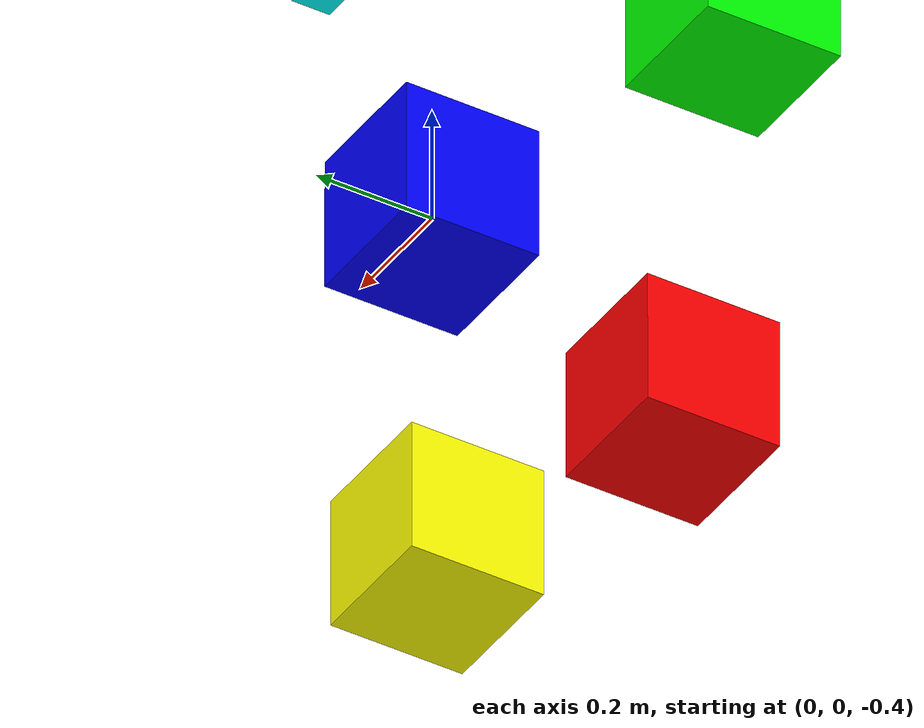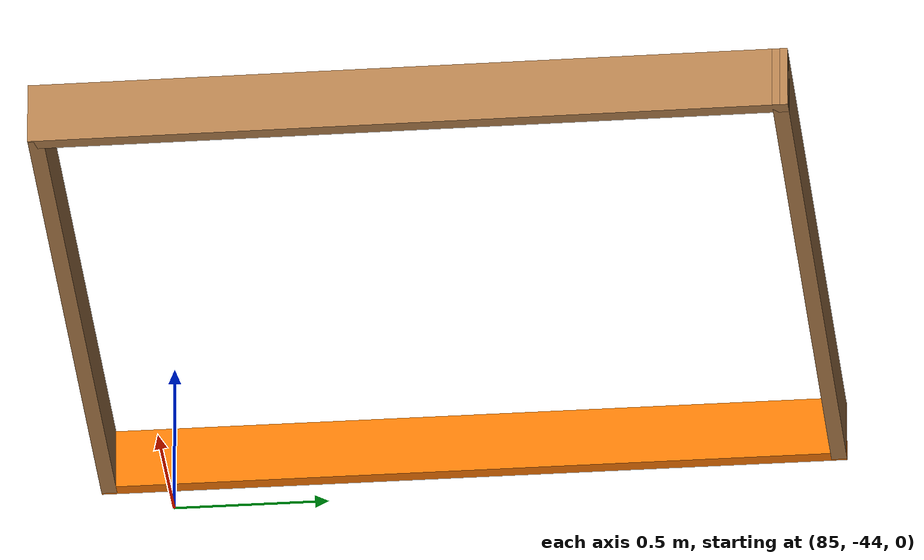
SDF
<?xml version='1.0'?>
<sdf version='1.6'>
  <model name='unit_box_0'>
    <link name='link'>
      <pose frame=''>-0 0 -0.382035 0 -0 0</pose>
      <inertial>
        <mass>1</mass>
        <inertia>
          <ixx>0.166667</ixx>
          <ixy>0</ixy>
          <ixz>0</ixz>
          <iyy>0.166667</iyy>
          <iyz>0</iyz>
          <izz>0.166667</izz>
        </inertia>
        <pose frame=''>0 0 0 0 -0 0</pose>
      </inertial>
      <self_collide>0</self_collide>
      <kinematic>0</kinematic>
      <gravity>1</gravity>
      <visual name='visual'>
        <geometry>
          <box>
            <size>0.23 0.23 0.23</size>
          </box>
        </geometry>
        <material>
          <script>
            <name>Gazebo/Grey</name>
            <uri>file://media/materials/scripts/gazebo.material</uri>
          </script>
          <ambient>0 0 1 1</ambient>
          <diffuse>0 0 1 1</diffuse>
          <specular>0 0 1 1</specular>
          <emissive>0 0 0 1</emissive>
          <shader type='vertex'>
            <normal_map>__default__</normal_map>
          </shader>
        </material>
        <pose frame=''>0 0 0 0 -0 0</pose>
        <cast_shadows>1</cast_shadows>
        <transparency>0</transparency>
      </visual>
      <collision name='collision'>
        <laser_retro>0</laser_retro>
        <max_contacts>10</max_contacts>
        <pose frame=''>0 0 0 0 -0 0</pose>
        <geometry>
          <box>
            <size>1 1 1</size>
          </box>
        </geometry>
        <surface>
          <friction>
            <ode>
              <mu>1</mu>
              <mu2>1</mu2>
              <fdir1>0 0 0</fdir1>
              <slip1>0</slip1>
              <slip2>0</slip2>
            </ode>
            <torsional>
              <coefficient>1</coefficient>
              <patch_radius>0</patch_radius>
              <surface_radius>0</surface_radius>
              <use_patch_radius>1</use_patch_radius>
              <ode>
                <slip>0</slip>
              </ode>
            </torsional>
          </friction>
          <bounce>
            <restitution_coefficient>0</restitution_coefficient>
            <threshold>1e+06</threshold>
          </bounce>
          <contact>
            <collide_without_contact>0</collide_without_contact>
            <collide_without_contact_bitmask>1</collide_without_contact_bitmask>
            <collide_bitmask>1</collide_bitmask>
            <ode>
              <soft_cfm>0</soft_cfm>
              <soft_erp>0.2</soft_erp>
              <kp>1e+13</kp>
              <kd>1</kd>
              <max_vel>0.01</max_vel>
              <min_depth>0</min_depth>
            </ode>
            <bullet>
              <split_impulse>1</split_impulse>
              <split_impulse_penetration_threshold>-0.01</split_impulse_penetration_threshold>
              <soft_cfm>0</soft_cfm>
              <soft_erp>0.2</soft_erp>
              <kp>1e+13</kp>
              <kd>1</kd>
            </bullet>
          </contact>
        </surface>
      </collision>
    </link>
    <link name='link_clone'>
      <pose frame=''>-0.64347 -0.122941 -0.382036 1e-05 -0 0</pose>
      <inertial>
        <mass>1</mass>
        <inertia>
          <ixx>0.166667</ixx>
          <ixy>0</ixy>
          <ixz>0</ixz>
          <iyy>0.166667</iyy>
          <iyz>0</iyz>
          <izz>0.166667</izz>
        </inertia>
        <pose frame=''>0 0 0 0 -0 0</pose>
      </inertial>
      <self_collide>0</self_collide>
      <kinematic>0</kinematic>
      <gravity>1</gravity>
      <visual name='visual'>
        <geometry>
          <box>
            <size>0.23 0.23 0.23</size>
          </box>
        </geometry>
        <material>
          <script>
            <name>Gazebo/Grey</name>
            <uri>file://media/materials/scripts/gazebo.material</uri>
          </script>
          <ambient>0 1 0 1</ambient>
          <diffuse>0 1 0 1</diffuse>
          <specular>0 0 1 1</specular>
          <emissive>0 0 0 1</emissive>
          <shader type='vertex'>
            <normal_map>__default__</normal_map>
          </shader>
        </material>
        <pose frame=''>0 0 0 0 -0 0</pose>
        <cast_shadows>1</cast_shadows>
        <transparency>0</transparency>
      </visual>
      <collision name='collision'>
        <laser_retro>0</laser_retro>
        <max_contacts>10</max_contacts>
        <pose frame=''>0 0 0 0 -0 0</pose>
        <geometry>
          <box>
            <size>1 1 1</size>
          </box>
        </geometry>
        <surface>
          <friction>
            <ode>
              <mu>1</mu>
              <mu2>1</mu2>
              <fdir1>0 0 0</fdir1>
              <slip1>0</slip1>
              <slip2>0</slip2>
            </ode>
            <torsional>
              <coefficient>1</coefficient>
              <patch_radius>0</patch_radius>
              <surface_radius>0</surface_radius>
              <use_patch_radius>1</use_patch_radius>
              <ode>
                <slip>0</slip>
              </ode>
            </torsional>
          </friction>
          <bounce>
            <restitution_coefficient>0</restitution_coefficient>
            <threshold>1e+06</threshold>
          </bounce>
          <contact>
            <collide_without_contact>0</collide_without_contact>
            <collide_without_contact_bitmask>1</collide_without_contact_bitmask>
            <collide_bitmask>1</collide_bitmask>
            <ode>
              <soft_cfm>0</soft_cfm>
              <soft_erp>0.2</soft_erp>
              <kp>1e+13</kp>
              <kd>1</kd>
              <max_vel>0.01</max_vel>
              <min_depth>0</min_depth>
            </ode>
            <bullet>
              <split_impulse>1</split_impulse>
              <split_impulse_penetration_threshold>-0.01</split_impulse_penetration_threshold>
              <soft_cfm>0</soft_cfm>
              <soft_erp>0.2</soft_erp>
              <kp>1e+13</kp>
              <kd>1</kd>
            </bullet>
          </contact>
        </surface>
      </collision>
    </link>
    <link name='link_clone_0'>
      <pose frame=''>0.215893 -0.551302 -0.376274 1e-05 -0 0</pose>
      <inertial>
        <mass>1</mass>
        <inertia>
          <ixx>0.166667</ixx>
          <ixy>0</ixy>
          <ixz>0</ixz>
          <iyy>0.166667</iyy>
          <iyz>0</iyz>
          <izz>0.166667</izz>
        </inertia>
        <pose frame=''>0 0 0 0 -0 0</pose>
      </inertial>
      <self_collide>0</self_collide>
      <kinematic>0</kinematic>
      <gravity>1</gravity>
      <visual name='visual'>
        <geometry>
          <box>
            <size>0.23 0.23 0.23</size>
          </box>
        </geometry>
        <material>
          <script>
            <name>Gazebo/Grey</name>
            <uri>file://media/materials/scripts/gazebo.material</uri>
          </script>
          <ambient>1 0 0 1</ambient>
          <diffuse>1 0 0 1</diffuse>
          <specular>0 0 1 1</specular>
          <emissive>0 0 0 1</emissive>
          <shader type='vertex'>
            <normal_map>__default__</normal_map>
          </shader>
        </material>
        <pose frame=''>0 0 0 0 -0 0</pose>
        <cast_shadows>1</cast_shadows>
        <transparency>0</transparency>
      </visual>
      <collision name='collision'>
        <laser_retro>0</laser_retro>
        <max_contacts>10</max_contacts>
        <pose frame=''>0 0 0 0 -0 0</pose>
        <geometry>
          <box>
            <size>1 1 1</size>
          </box>
        </geometry>
        <surface>
          <friction>
            <ode>
              <mu>1</mu>
              <mu2>1</mu2>
              <fdir1>0 0 0</fdir1>
              <slip1>0</slip1>
              <slip2>0</slip2>
            </ode>
            <torsional>
              <coefficient>1</coefficient>
              <patch_radius>0</patch_radius>
              <surface_radius>0</surface_radius>
              <use_patch_radius>1</use_patch_radius>
              <ode>
                <slip>0</slip>
              </ode>
            </torsional>
          </friction>
          <bounce>
            <restitution_coefficient>0</restitution_coefficient>
            <threshold>1e+06</threshold>
          </bounce>
          <contact>
            <collide_without_contact>0</collide_without_contact>
            <collide_without_contact_bitmask>1</collide_without_contact_bitmask>
            <collide_bitmask>1</collide_bitmask>
            <ode>
              <soft_cfm>0</soft_cfm>
              <soft_erp>0.2</soft_erp>
              <kp>1e+13</kp>
              <kd>1</kd>
              <max_vel>0.01</max_vel>
              <min_depth>0</min_depth>
            </ode>
            <bullet>
              <split_impulse>1</split_impulse>
              <split_impulse_penetration_threshold>-0.01</split_impulse_penetration_threshold>
              <soft_cfm>0</soft_cfm>
              <soft_erp>0.2</soft_erp>
              <kp>1e+13</kp>
              <kd>1</kd>
            </bullet>
          </contact>
        </surface>
      </collision>
    </link>
    <link name='link_clone_1'>
      <pose frame=''>-0.564556 0.567698 -0.382029 1e-05 -0 0</pose>
      <inertial>
        <mass>1</mass>
        <inertia>
          <ixx>0.166667</ixx>
          <ixy>0</ixy>
          <ixz>0</ixz>
          <iyy>0.166667</iyy>
          <iyz>0</iyz>
          <izz>0.166667</izz>
        </inertia>
        <pose frame=''>0 0 0 0 -0 0</pose>
      </inertial>
      <self_collide>0</self_collide>
      <kinematic>0</kinematic>
      <gravity>1</gravity>
      <visual name='visual'>
        <geometry>
          <box>
            <size>0.23 0.23 0.23</size>
          </box>
        </geometry>
        <material>
          <script>
            <name>Gazebo/Grey</name>
            <uri>file://media/materials/scripts/gazebo.material</uri>
          </script>
          <ambient>0 1 1 1</ambient>
          <diffuse>0 1 1 1</diffuse>
          <specular>0 0 1 1</specular>
          <emissive>0 0 0 1</emissive>
          <shader type='vertex'>
            <normal_map>__default__</normal_map>
          </shader>
        </material>
        <pose frame=''>0 0 0 0 -0 0</pose>
        <cast_shadows>1</cast_shadows>
        <transparency>0</transparency>
      </visual>
      <collision name='collision'>
        <laser_retro>0</laser_retro>
        <max_contacts>10</max_contacts>
        <pose frame=''>0 0 0 0 -0 0</pose>
        <geometry>
          <box>
            <size>1 1 1</size>
          </box>
        </geometry>
        <surface>
          <friction>
            <ode>
              <mu>1</mu>
              <mu2>1</mu2>
              <fdir1>0 0 0</fdir1>
              <slip1>0</slip1>
              <slip2>0</slip2>
            </ode>
            <torsional>
              <coefficient>1</coefficient>
              <patch_radius>0</patch_radius>
              <surface_radius>0</surface_radius>
              <use_patch_radius>1</use_patch_radius>
              <ode>
                <slip>0</slip>
              </ode>
            </torsional>
          </friction>
          <bounce>
            <restitution_coefficient>0</restitution_coefficient>
            <threshold>1e+06</threshold>
          </bounce>
          <contact>
            <collide_without_contact>0</collide_without_contact>
            <collide_without_contact_bitmask>1</collide_without_contact_bitmask>
            <collide_bitmask>1</collide_bitmask>
            <ode>
              <soft_cfm>0</soft_cfm>
              <soft_erp>0.2</soft_erp>
              <kp>1e+13</kp>
              <kd>1</kd>
              <max_vel>0.01</max_vel>
              <min_depth>0</min_depth>
            </ode>
            <bullet>
              <split_impulse>1</split_impulse>
              <split_impulse_penetration_threshold>-0.01</split_impulse_penetration_threshold>
              <soft_cfm>0</soft_cfm>
              <soft_erp>0.2</soft_erp>
              <kp>1e+13</kp>
              <kd>1</kd>
            </bullet>
          </contact>
        </surface>
      </collision>
    </link>
    <link name='link_clone_2'>
      <pose frame=''>0.702551 -0.441644 -0.382039 1e-05 -0 0</pose>
      <inertial>
        <mass>1</mass>
        <inertia>
          <ixx>0.166667</ixx>
          <ixy>0</ixy>
          <ixz>0</ixz>
          <iyy>0.166667</iyy>
          <iyz>0</iyz>
          <izz>0.166667</izz>
        </inertia>
        <pose frame=''>0 0 0 0 -0 0</pose>
      </inertial>
      <self_collide>0</self_collide>
      <kinematic>0</kinematic>
      <gravity>1</gravity>
      <visual name='visual'>
        <geometry>
          <box>
            <size>0.23 0.23 0.23</size>
          </box>
        </geometry>
        <material>
          <script>
            <name>Gazebo/Grey</name>
            <uri>file://media/materials/scripts/gazebo.material</uri>
          </script>
          <ambient>1 1 0 1</ambient>
          <diffuse>1 1 0 1</diffuse>
          <specular>0 0 1 1</specular>
          <emissive>0 0 0 1</emissive>
          <shader type='vertex'>
            <normal_map>__default__</normal_map>
          </shader>
        </material>
        <pose frame=''>0 0 0 0 -0 0</pose>
        <cast_shadows>1</cast_shadows>
        <transparency>0</transparency>
      </visual>
      <collision name='collision'>
        <laser_retro>0</laser_retro>
        <max_contacts>10</max_contacts>
        <pose frame=''>0 0 0 0 -0 0</pose>
        <geometry>
          <box>
            <size>1 1 1</size>
          </box>
        </geometry>
        <surface>
          <friction>
            <ode>
              <mu>1</mu>
              <mu2>1</mu2>
              <fdir1>0 0 0</fdir1>
              <slip1>0</slip1>
              <slip2>0</slip2>
            </ode>
            <torsional>
              <coefficient>1</coefficient>
              <patch_radius>0</patch_radius>
              <surface_radius>0</surface_radius>
              <use_patch_radius>1</use_patch_radius>
              <ode>
                <slip>0</slip>
              </ode>
            </torsional>
          </friction>
          <bounce>
            <restitution_coefficient>0</restitution_coefficient>
            <threshold>1e+06</threshold>
          </bounce>
          <contact>
            <collide_without_contact>0</collide_without_contact>
            <collide_without_contact_bitmask>1</collide_without_contact_bitmask>
            <collide_bitmask>1</collide_bitmask>
            <ode>
              <soft_cfm>0</soft_cfm>
              <soft_erp>0.2</soft_erp>
              <kp>1e+13</kp>
              <kd>1</kd>
              <max_vel>0.01</max_vel>
              <min_depth>0</min_depth>
            </ode>
            <bullet>
              <split_impulse>1</split_impulse>
              <split_impulse_penetration_threshold>-0.01</split_impulse_penetration_threshold>
              <soft_cfm>0</soft_cfm>
              <soft_erp>0.2</soft_erp>
              <kp>1e+13</kp>
              <kd>1</kd>
            </bullet>
          </contact>
        </surface>
      </collision>
    </link>
    <model name='boundry'>
      <pose frame=''>86.3199 -43.0128 -0.000432 0 -0 0</pose>
      <link name='Wall_0'>
        <collision name='Wall_0_Collision'>
          <geometry>
            <box>
              <size>2.37732 0.05 0.2</size>
            </box>
          </geometry>
          <pose frame=''>0 0 0.1 0 -0 0</pose>
        </collision>
        <visual name='Wall_0_Visual'>
          <pose frame=''>0 0 0.1 0 -0 0</pose>
          <geometry>
            <box>
              <size>2.37732 0.05 0.2</size>
            </box>
          </geometry>
          <material>
            <script>
              <uri>file://media/materials/scripts/gazebo.material</uri>
              <name>Gazebo/Wood</name>
            </script>
            <ambient>0.996078 0.47451 0.0196078 1</ambient>
          </material>
        </visual>
        <pose frame=''>-0.008489 -1.17505 0 0 -0 0.007257</pose>
      </link>
      <link name='Wall_14'>
        <collision name='Wall_14_Collision'>
          <geometry>
            <box>
              <size>2.4 0.05 0.2</size>
            </box>
          </geometry>
          <pose frame=''>0 0 0.1 0 -0 0</pose>
        </collision>
        <visual name='Wall_14_Visual'>
          <pose frame=''>0 0 0.1 0 -0 0</pose>
          <geometry>
            <box>
              <size>2.4 0.05 0.2</size>
            </box>
          </geometry>
          <material>
            <script>
              <uri>file://media/materials/scripts/gazebo.material</uri>
              <name>Gazebo/Grey</name>
            </script>
            <ambient>0.996078 0.47451 0.0196078 1</ambient>
          </material>
        </visual>
        <pose frame=''>-1.17524 -0.008491 0 0 -0 1.56702</pose>
      </link>
      <link name='Wall_2'>
        <collision name='Wall_2_Collision'>
          <geometry>
            <box>
              <size>2.4 0.05 0.2</size>
            </box>
          </geometry>
          <pose frame=''>0 0 0.1 0 -0 0</pose>
        </collision>
        <visual name='Wall_2_Visual'>
          <pose frame=''>0 0 0.1 0 -0 0</pose>
          <geometry>
            <box>
              <size>2.4 0.05 0.2</size>
            </box>
          </geometry>
          <material>
            <script>
              <uri>file://media/materials/scripts/gazebo.material</uri>
              <name>Gazebo/Wood</name>
            </script>
            <ambient>0.996078 0.47451 0.0196078 1</ambient>
          </material>
        </visual>
        <pose frame=''>1.17115 0.008444 0 0 -0 1.56361</pose>
      </link>
      <link name='Wall_4'>
        <collision name='Wall_4_Collision'>
          <geometry>
            <box>
              <size>2.39289 0.05 0.2</size>
            </box>
          </geometry>
          <pose frame=''>0 0 0.1 0 -0 0</pose>
        </collision>
        <visual name='Wall_4_Visual'>
          <pose frame=''>0 0 0.1 0 -0 0</pose>
          <geometry>
            <box>
              <size>2.39289 0.05 0.2</size>
            </box>
          </geometry>
          <material>
            <script>
              <uri>file://media/materials/scripts/gazebo.material</uri>
              <name>Gazebo/Wood</name>
            </script>
            <ambient>0.996078 0.47451 0.0196078 1</ambient>
          </material>
        </visual>
        <pose frame=''>0.008176 1.175 0 0 0 -3.13434</pose>
      </link>
      <static>1</static>
    </model>
    <static>0</static>
    <allow_auto_disable>1</allow_auto_disable>
  </model>
</sdf>
